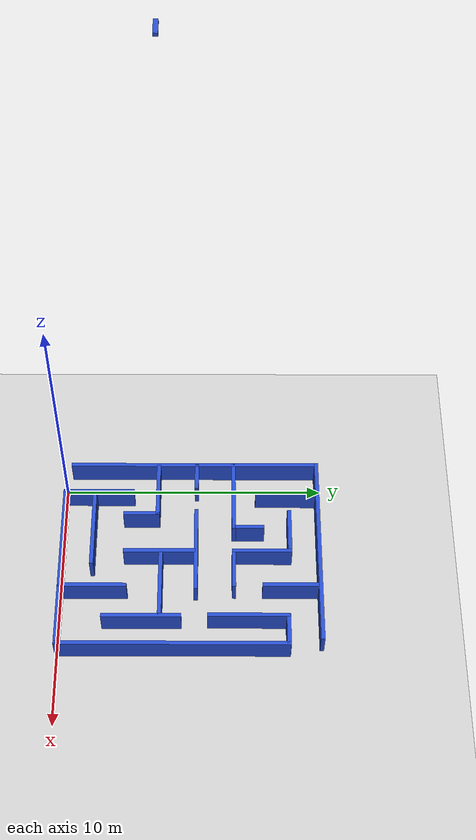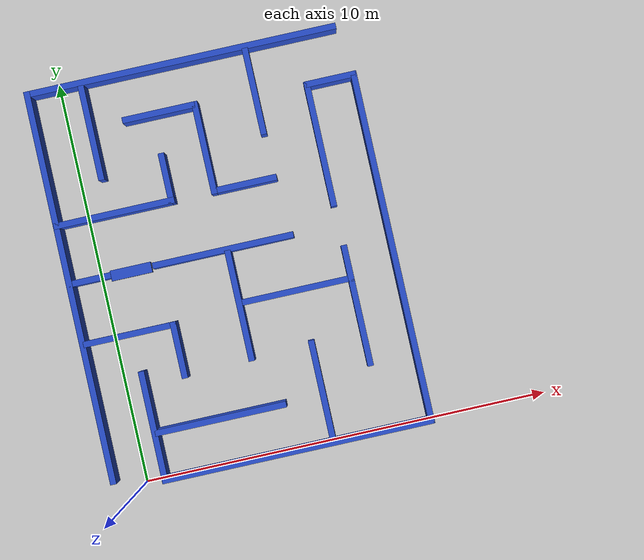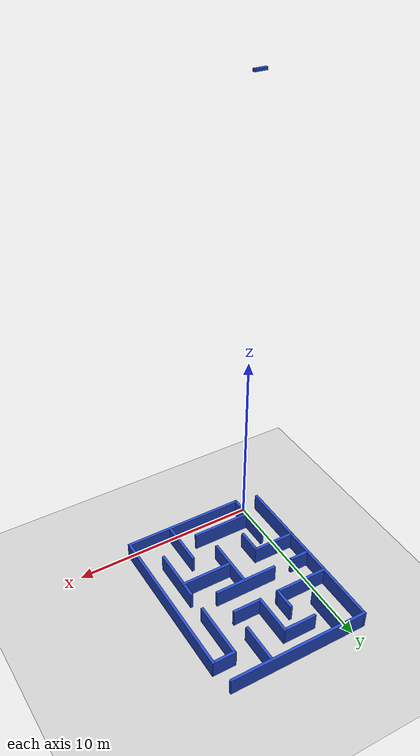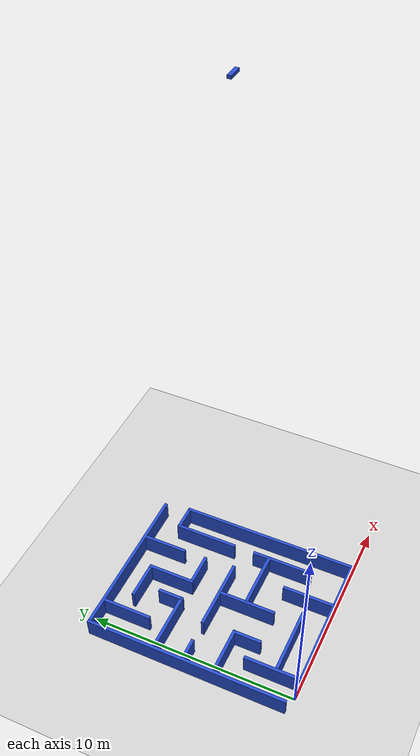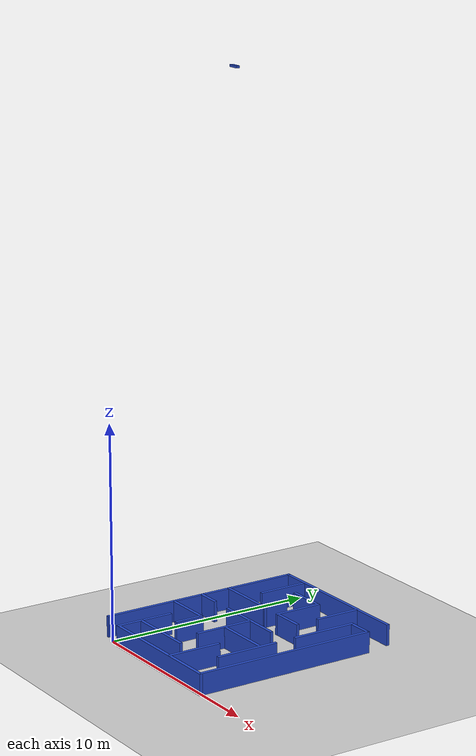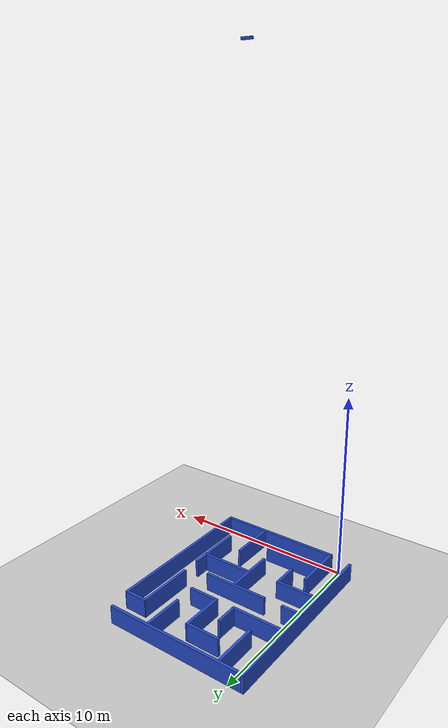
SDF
<sdf version="1.7">
 <world name="default">
  <light name="sun" type="directional">
   <pose>0 0 10 0 -0 0</pose>
   <diffuse>0.8 0.8 0.8 1</diffuse>
   <specular>0.2 0.2 0.2 1</specular>
   <attenuation>
    <range>1000</range>
    <constant>0.9</constant>
    <linear>0.01</linear>
    <quadratic>0.001</quadratic>
   </attenuation>
   <direction>-0.5 0.1 -0.9</direction>
   <spot><inner_angle>0</inner_angle><outer_angle>0</outer_angle><falloff>0</falloff></spot>
  </light>
  <model name="ground_plane">
   <static>1</static>
   <link name="link">
    <collision name="collision">
     <geometry><plane><normal>0 0 1</normal><size>100 100</size></plane></geometry>
     <surface><friction><ode><mu>100</mu><mu2>50</mu2></ode></friction></surface>
    </collision>
    <visual name="visual">
     <cast_shadows>0</cast_shadows>
     <geometry><plane><normal>0 0 1</normal><size>100 100</size></plane></geometry>
     <material>
      <script><uri>file://media/materials/scripts/gazebo.material</uri><name>Gazebo/Grey</name></script>
     </material>
    </visual>
   </link>
  </model>
  <gravity>0 0 -9.8</gravity>
  <magnetic_field>6e-06 2.3e-05 -4.2e-05</magnetic_field>
  <atmosphere type="adiabatic"/>
  <physics type="ode">
   <max_step_size>0.001</max_step_size>
   <real_time_factor>1</real_time_factor>
   <real_time_update_rate>1000</real_time_update_rate>
  </physics>
  <scene><ambient>0.4 0.4 0.4 1</ambient><background>0.7 0.7 0.7 1</background><shadows>0</shadows></scene>
  <spherical_coordinates>
   <surface_model>EARTH_WGS84</surface_model>
   <latitude_deg>0</latitude_deg>
   <longitude_deg>0</longitude_deg>
   <elevation>0</elevation>
   <heading_deg>0</heading_deg>
  </spherical_coordinates>
  <model name="camera">
   <link name="link_0">
    <inertial>
     <mass>0.00707571</mass>
     <inertia>
      <ixx>1.66494e-05</ixx>
      <ixy>0</ixy>
      <ixz>0</ixz>
      <iyy>0.000165453</iyy>
      <iyz>0</iyz>
      <izz>0.000169817</izz>
     </inertia>
    </inertial>
    <visual name="visual">
     <geometry><box><size>0.519789 0.133487 0.102067</size></box></geometry>
     <material>
      <lighting>1</lighting>
      <script><uri>file://media/materials/scripts/gazebo.material</uri><name>Gazebo/Blue</name></script>
      <shader type="pixel"/>
     </material>
     <cast_shadows>0</cast_shadows>
    </visual>
    <collision name="collision">
     <geometry><box><size>0.519789 0.133487 0.102067</size></box></geometry>
     <surface>
      <friction>
       <ode><mu>1</mu><mu2>1</mu2><fdir1>0 0 0</fdir1><slip1>0</slip1><slip2>0</slip2></ode>
       <torsional>
        <coefficient>1</coefficient>
        <patch_radius>0</patch_radius>
        <surface_radius>0</surface_radius>
        <use_patch_radius>1</use_patch_radius>
        <ode><slip>0</slip></ode>
       </torsional>
      </friction>
      <bounce><restitution_coefficient>0</restitution_coefficient><threshold>1e+06</threshold></bounce>
      <contact>
       <collide_without_contact>0</collide_without_contact>
       <collide_without_contact_bitmask>1</collide_without_contact_bitmask>
       <collide_bitmask>1</collide_bitmask>
       <ode>
        <soft_cfm>0</soft_cfm>
        <soft_erp>0.2</soft_erp>
        <kp>1e+13</kp>
        <kd>1</kd>
        <max_vel>0.01</max_vel>
        <min_depth>0</min_depth>
       </ode>
       <bullet>
        <split_impulse>1</split_impulse>
        <split_impulse_penetration_threshold>-0.01</split_impulse_penetration_threshold>
        <soft_cfm>0</soft_cfm>
        <soft_erp>0.2</soft_erp>
        <kp>1e+13</kp>
        <kd>1</kd>
       </bullet>
      </contact>
     </surface>
    </collision>
    <sensor name="sat_camera" type="camera">
     <pose>0 0 0 0 1.57 0</pose>
     <always_on>1</always_on>
     <visualize>1</visualize>
     <update_rate>30</update_rate>
     <camera name="Maze_sat_camera">
      <horizontal_fov>1.0856</horizontal_fov>
      <image><width>1280</width><height>720</height><format>R8G8B8</format></image>
      <clip><near>0.03</near><far>100</far></clip>
      <noise><type>gaussian</type><mean>0</mean><stddev>0.007</stddev></noise>
     </camera>
     <plugin name="camera_driver" filename="libgazebo_ros_camera.so"/>
    </sensor>
   </link>
   <static>1</static>
   <pose>2.99941 4.46162 25.4161 0 -0 0</pose>
  </model>
  <model name="laberinto">
   <pose>3.19542 4.92683 0 0 -0 0</pose>
   <link name="wall_L">
    <collision name="wall_L_Collision"><geometry><box><size>8.75 0.15 1.9</size></box></geometry></collision>
    <visual name="wall_L_Visual">
     <geometry><box><size>8.75 0.15 1.9</size></box></geometry>
     <material>
      <script><uri>file://media/materials/scripts/gazebo.material</uri><name>Gazebo/Blue</name></script>
      <ambient>0 0 1 1</ambient>
     </material>
     <meta><layer>0</layer></meta>
    </visual>
    <pose>3.92259 -0.630829 0 0 -0 -1.5708</pose>
   </link>
   <link name="wall_T">
    <collision name="wall_T_Collision"><geometry><box><size>6.75 0.15 1.9</size></box></geometry></collision>
    <visual name="wall_T_Visual">
     <geometry><box><size>6.75 0.15 1.9</size></box></geometry>
     <material>
      <script><uri>file://media/materials/scripts/gazebo.material</uri><name>Gazebo/Blue</name></script>
      <ambient>0 0 1 1</ambient>
     </material>
     <meta><layer>0</layer></meta>
    </visual>
    <pose>0.622594 -4.93083 0 0 -0 3.14159</pose>
   </link>
   <link name="wall_001">
    <collision name="wall_001_Collision"><geometry><box><size>2.75 0.15 1.9</size></box></geometry></collision>
    <visual name="wall_001_Visual">
     <geometry><box><size>2.75 0.15 1.9</size></box></geometry>
     <material>
      <script><uri>file://media/materials/scripts/gazebo.material</uri><name>Gazebo/Blue</name></script>
      <ambient>0 0 1 1</ambient>
     </material>
     <meta><layer>0</layer></meta>
    </visual>
    <pose>-2.678 -3.61 0 0 0 1.57</pose>
   </link>
   <link name="wall_002">
    <collision name="wall_002_Collision"><geometry><box><size>2.3 0.15 1.9</size></box></geometry></collision>
    <visual name="wall_002_Visual">
     <geometry><box><size>2.3 0.15 1.9</size></box></geometry>
     <material>
      <script><uri>file://media/materials/scripts/gazebo.material</uri><name>Gazebo/Blue</name></script>
      <ambient>0 0 1 1</ambient>
     </material>
     <meta><layer>0</layer></meta>
    </visual>
    <pose>-2.74759 -1.3 0 0 -0 0</pose>
   </link>
   <link name="wall_011">
    <collision name="wall_011_Collision"><geometry><box><size>3 0.15 1.9</size></box></geometry></collision>
    <visual name="wall_011_Visual">
     <geometry><box><size>3 0.15 1.9</size></box></geometry>
     <material>
      <script><uri>file://media/materials/scripts/gazebo.material</uri><name>Gazebo/Blue</name></script>
      <ambient>0 0 1 1</ambient>
     </material>
     <meta><layer>0</layer></meta>
    </visual>
    <pose>-2.48295 1.65 0 0 -0 0</pose>
   </link>
   <link name="wall_012">
    <collision name="wall_012_Collision"><geometry><box><size>1.25 0.15 1.9</size></box></geometry></collision>
    <visual name="wall_012_Visual">
     <geometry><box><size>1.25 0.15 1.9</size></box></geometry>
     <material>
      <script><uri>file://media/materials/scripts/gazebo.material</uri><name>Gazebo/Blue</name></script>
      <ambient>0 0 1 1</ambient>
     </material>
     <meta><layer>0</layer></meta>
    </visual>
    <pose>-1.06 2.2 0 0 -0 1.57</pose>
   </link>
   <link name="wall_003">
    <collision name="wall_003_Collision"><geometry><box><size>1.4 0.15 1.9</size></box></geometry></collision>
    <visual name="wall_003_Visual">
     <geometry><box><size>1.4 0.15 1.9</size></box></geometry>
     <material>
      <script><uri>file://media/materials/scripts/gazebo.material</uri><name>Gazebo/Blue</name></script>
      <ambient>0 0 1 1</ambient>
     </material>
     <meta><layer>0</layer></meta>
    </visual>
    <pose>-1.67 -1.9299 0 0 -0 -1.5708</pose>
   </link>
   <link name="wall_R">
    <collision name="wall_R_Collision"><geometry><box><size>9.75 0.15 1.9</size></box></geometry></collision>
    <visual name="wall_R_Visual">
     <geometry><box><size>9.75 0.15 1.9</size></box></geometry>
     <material>
      <script><uri>file://media/materials/scripts/gazebo.material</uri><name>Gazebo/Blue</name></script>
      <ambient>0 0 1 1</ambient>
     </material>
     <meta><layer>0</layer></meta>
    </visual>
    <pose>-3.91589 0.119305 0 0 -0 1.5708</pose>
   </link>
   <link name="wall_004">
    <collision name="wall_004_Collision"><geometry><box><size>3.25 0.15 1.9</size></box></geometry></collision>
    <visual name="wall_004_Visual">
     <geometry><box><size>3.25 0.15 1.9</size></box></geometry>
     <material>
      <script><uri>file://media/materials/scripts/gazebo.material</uri><name>Gazebo/Blue</name></script>
      <ambient>0 0 1 1</ambient>
     </material>
     <meta><layer>0</layer></meta>
    </visual>
    <pose>-1.0426 -3.77161 0 0 -0 0</pose>
   </link>
   <link name="wall_005">
    <collision name="wall_005_Collision"><geometry><box><size>3.1 0.15 1.9</size></box></geometry></collision>
    <visual name="wall_005_Visual">
     <geometry><box><size>3.1 0.15 1.9</size></box></geometry>
     <material>
      <script><uri>file://media/materials/scripts/gazebo.material</uri><name>Gazebo/Blue</name></script>
      <ambient>0 0 1 1</ambient>
     </material>
     <meta><layer>0</layer></meta>
    </visual>
    <pose>2.76 2.2 0 0 -0 1.57</pose>
   </link>
   <link name="wall_006">
    <collision name="wall_006_Collision"><geometry><box><size>2.6 0.15 1.9</size></box></geometry></collision>
    <visual name="wall_006_Visual">
     <geometry><box><size>2.6 0.15 1.9</size></box></geometry>
     <material>
      <script><uri>file://media/materials/scripts/gazebo.material</uri><name>Gazebo/Blue</name></script>
      <ambient>0 0 1 1</ambient>
     </material>
     <meta><layer>0</layer></meta>
    </visual>
    <pose>1.5 -3.7 0 0 -0 1.57</pose>
   </link>
   <link name="wall_010">
    <collision name="wall_010_Collision"><geometry><box><size>3 0.15 1.9</size></box></geometry></collision>
    <visual name="wall_010_Visual">
     <geometry><box><size>3 0.15 1.9</size></box></geometry>
     <material>
      <script><uri>file://media/materials/scripts/gazebo.material</uri><name>Gazebo/Blue</name></script>
      <ambient>0 0 1 1</ambient>
     </material>
     <meta><layer>0</layer></meta>
    </visual>
    <pose>2.78 -1.82 0 0 -0 1.5708</pose>
   </link>
   <link name="wall_007">
    <collision name="wall_007_Collision"><geometry><box><size>1.15 0.15 1.9</size></box></geometry></collision>
    <visual name="wall_007_Visual">
     <geometry><box><size>1.15 0.15 1.9</size></box></geometry>
     <material>
      <script><uri>file://media/materials/scripts/gazebo.material</uri><name>Gazebo/Blue</name></script>
      <ambient>0 0 1 1</ambient>
     </material>
     <meta><layer>0</layer></meta>
    </visual>
    <pose>-3.4 0.2 0 0 -0 0</pose>
   </link>
   <link name="wall_008">
    <collision name="wall_008_Collision"><geometry><box><size>2.75 0.15 1.9</size></box></geometry></collision>
    <visual name="wall_008_Visual">
     <geometry><box><size>2.75 0.15 1.9</size></box></geometry>
     <material>
      <script><uri>file://media/materials/scripts/gazebo.material</uri><name>Gazebo/Blue</name></script>
      <ambient>0 0 1 1</ambient>
     </material>
     <meta><layer>0</layer></meta>
    </visual>
    <pose>0 -1.2 0 0 -0 1.57</pose>
   </link>
   <link name="wall_009">
    <collision name="wall_009_Collision"><geometry><box><size>2.8 0.15 1.9</size></box></geometry></collision>
    <visual name="wall_009_Visual">
     <geometry><box><size>2.8 0.15 1.9</size></box></geometry>
     <material>
      <script><uri>file://media/materials/scripts/gazebo.material</uri><name>Gazebo/Blue</name></script>
      <ambient>0 0 1 1</ambient>
     </material>
     <meta><layer>0</layer></meta>
    </visual>
    <pose>1.436 -1.141131 0 0 -0 0</pose>
   </link>
   <link name="wall_015">
    <collision name="wall_015_Collision"><geometry><box><size>1.5 0.15 1.9</size></box></geometry></collision>
    <visual name="wall_015_Visual">
     <geometry><box><size>1.5 0.15 1.9</size></box></geometry>
     <material>
      <script><uri>file://media/materials/scripts/gazebo.material</uri><name>Gazebo/Blue</name></script>
      <ambient>0 0 1 1</ambient>
     </material>
     <meta><layer>0</layer></meta>
    </visual>
    <pose>0.8073 1.65 0 0 0 0</pose>
   </link>
   <link name="wall_014">
    <collision name="wall_014_Collision"><geometry><box><size>2.3 0.15 1.9</size></box></geometry></collision>
    <visual name="wall_014_Visual">
     <geometry><box><size>2.3 0.15 1.9</size></box></geometry>
     <material>
      <script><uri>file://media/materials/scripts/gazebo.material</uri><name>Gazebo/Blue</name></script>
      <ambient>0 0 1 1</ambient>
     </material>
     <meta><layer>0</layer></meta>
    </visual>
    <pose>0 2.7251 0 0 0 1.5707</pose>
   </link>
   <link name="wall_018">
    <collision name="wall_018_Collision"><geometry><box><size>1.8 0.15 1.9</size></box></geometry></collision>
    <visual name="wall_018_Visual">
     <geometry><box><size>1.8 0.15 1.9</size></box></geometry>
     <material>
      <script><uri>file://media/materials/scripts/gazebo.material</uri><name>Gazebo/Blue</name></script>
      <ambient>0 0 1 1</ambient>
     </material>
     <meta><layer>0</layer></meta>
    </visual>
    <pose>-0.9 3.80145 0 0 -0 3.14159</pose>
   </link>
   <link name="wall_013">
    <collision name="wall_013_Collision"><geometry><box><size>2.35 0.15 1.9</size></box></geometry></collision>
    <visual name="wall_013_Visual">
     <geometry><box><size>2.35 0.15 1.9</size></box></geometry>
     <material>
      <script><uri>file://media/materials/scripts/gazebo.material</uri><name>Gazebo/Blue</name></script>
      <ambient>0 0 1 1</ambient>
     </material>
     <meta><layer>0</layer></meta>
    </visual>
    <pose>-2.6 3.67645 0 0 -0 1.5708</pose>
   </link>
   <link name="wall_016">
    <collision name="wall_016_Collision"><geometry><box><size>2.15 0.15 1.9</size></box></geometry></collision>
    <visual name="wall_016_Visual">
     <geometry><box><size>2.15 0.15 1.9</size></box></geometry>
     <material>
      <script><uri>file://media/materials/scripts/gazebo.material</uri><name>Gazebo/Blue</name></script>
      <ambient>0 0 1 1</ambient>
     </material>
     <meta><layer>0</layer></meta>
    </visual>
    <pose>1.48 3.8 0 0 -0 1.5707</pose>
   </link>
   <link name="wall_017">
    <collision name="wall_017_Collision"><geometry><box><size>1.26 0.15 1.9</size></box></geometry></collision>
    <visual name="wall_017_Visual">
     <geometry><box><size>1.26 0.15 1.9</size></box></geometry>
     <material>
      <script><uri>file://media/materials/scripts/gazebo.material</uri><name>Gazebo/Blue</name></script>
      <ambient>0 0 1 1</ambient>
     </material>
     <meta><layer>0</layer></meta>
    </visual>
    <pose>3.345 3.68 0 0 -0 0</pose>
   </link>
   <link name="wall_019">
    <collision name="wall_019_Collision"><geometry><box><size>3.5 0.15 1.9</size></box></geometry></collision>
    <visual name="wall_019_Visual">
     <geometry><box><size>3.5 0.15 1.9</size></box></geometry>
     <material>
      <script><uri>file://media/materials/scripts/gazebo.material</uri><name>Gazebo/Blue</name></script>
      <ambient>0 0 1 1</ambient>
     </material>
     <meta><layer>0</layer></meta>
    </visual>
    <pose>-0.1 0.2 0 0 -0 0</pose>
   </link>
   <link name="wall_B">
    <collision name="wall_B_Collision"><geometry><box><size>7.75 0.15 1.9</size></box></geometry></collision>
    <visual name="wall_B_Visual">
     <geometry><box><size>7.75 0.15 1.9</size></box></geometry>
     <material>
      <script><uri>file://media/materials/scripts/gazebo.material</uri><name>Gazebo/Blue</name></script>
      <ambient>0 0 1 1</ambient>
     </material>
     <meta><layer>0</layer></meta>
    </visual>
    <pose>-0.115891 4.9193 0 0 -0 0</pose>
   </link>
   <static>1</static>
  </model>
 </world>
</sdf>
